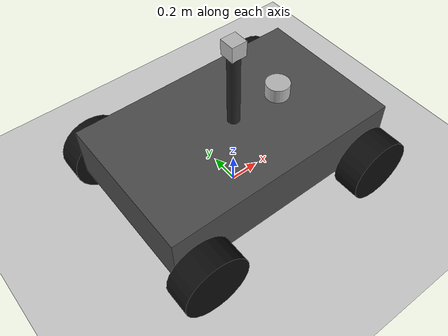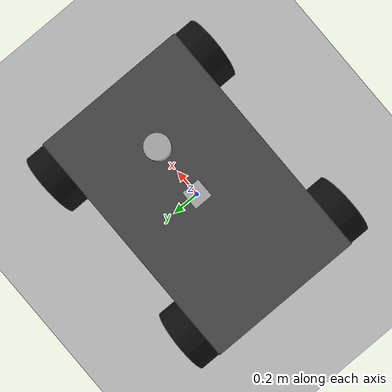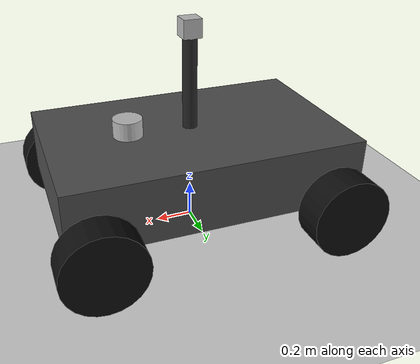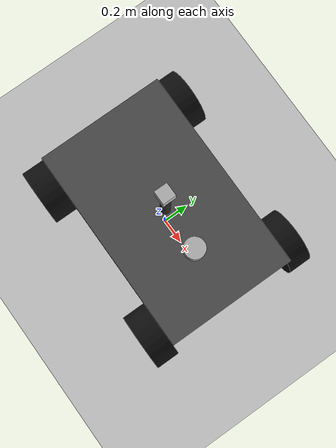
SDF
<sdf version="1.7">
    <world name="test_world">

        <plugin
            filename="gz-sim-physics-system"
            name="gz::sim::systems::Physics">
        </plugin>
        <plugin
            filename="gz-sim-sensors-system"
            name="gz::sim::systems::Sensors">
            <render_engine>ogre2</render_engine>
        </plugin>
        <plugin
            filename="gz-sim-user-commands-system"
            name="gz::sim::systems::UserCommands">
        </plugin>
        <plugin
            filename="gz-sim-scene-broadcaster-system"
            name="gz::sim::systems::SceneBroadcaster">
        </plugin>

        <gui fullscreen="0">

            <!-- 3D scene -->
            <plugin filename="MinimalScene" name="3D View">
                <gz-gui>
                <title>3D View</title>
                <property type="bool" key="showTitleBar">false</property>
                <property type="string" key="state">docked</property>
                </gz-gui>

                <engine>ogre2</engine>
                <scene>scene</scene>
                <ambient_light>0.4 0.4 0.4</ambient_light>
                <background_color>0.8 0.8 0.8</background_color>
                <camera_pose>-6 0 6 0 0.5 0</camera_pose>
            </plugin>

            <!-- Plugins that add functionality to the scene -->
            <plugin filename="EntityContextMenuPlugin" name="Entity context menu">
                <gz-gui>
                <property key="state" type="string">floating</property>
                <property key="width" type="double">5</property>
                <property key="height" type="double">5</property>
                <property key="showTitleBar" type="bool">false</property>
                </gz-gui>
            </plugin>
            <plugin filename="GzSceneManager" name="Scene Manager">
                <gz-gui>
                <property key="resizable" type="bool">false</property>
                <property key="width" type="double">5</property>
                <property key="height" type="double">5</property>
                <property key="state" type="string">floating</property>
                <property key="showTitleBar" type="bool">false</property>
                </gz-gui>
            </plugin>
            <plugin filename="InteractiveViewControl" name="Interactive view control">
                <gz-gui>
                <property key="resizable" type="bool">false</property>
                <property key="width" type="double">5</property>
                <property key="height" type="double">5</property>
                <property key="state" type="string">floating</property>
                <property key="showTitleBar" type="bool">false</property>
                </gz-gui>
            </plugin>
            <plugin filename="CameraTracking" name="Camera Tracking">
                <gz-gui>
                <property key="resizable" type="bool">false</property>
                <property key="width" type="double">5</property>
                <property key="height" type="double">5</property>
                <property key="state" type="string">floating</property>
                <property key="showTitleBar" type="bool">false</property>
                </gz-gui>
            </plugin>
            <!-- World control -->
            <plugin filename="WorldControl" name="World control">
                <gz-gui>
                <title>World control</title>
                <property type="bool" key="showTitleBar">false</property>
                <property type="bool" key="resizable">false</property>
                <property type="double" key="height">72</property>
                <property type="double" key="z">1</property>

                <property type="string" key="state">floating</property>
                <anchors target="3D View">
                    <line own="left" target="left"/>
                    <line own="bottom" target="bottom"/>
                </anchors>
                </gz-gui>

                <play_pause>true</play_pause>
                <step>true</step>
                <start_paused>true</start_paused>
                <use_event>true</use_event>

            </plugin>

            <!-- World statistics -->
            <plugin filename="WorldStats" name="World stats">
                <gz-gui>
                <title>World stats</title>
                <property type="bool" key="showTitleBar">false</property>
                <property type="bool" key="resizable">false</property>
                <property type="double" key="height">110</property>
                <property type="double" key="width">290</property>
                <property type="double" key="z">1</property>

                <property type="string" key="state">floating</property>
                <anchors target="3D View">
                    <line own="right" target="right"/>
                    <line own="bottom" target="bottom"/>
                </anchors>
                </gz-gui>

                <sim_time>true</sim_time>
                <real_time>true</real_time>
                <real_time_factor>true</real_time_factor>
                <iterations>true</iterations>
            </plugin>

            <plugin filename="ImageDisplay" name="Image Display">
                <gz-gui>
                <property key="state" type="string">floating</property>
                </gz-gui>
                <topic>camera</topic>
            </plugin>

            <!-- Inspector -->

            <!-- Entity tree -->
        </gui>

        <include>
            <uri>
                https://fuel.gazebosim.org/1.0/OpenRobotics/models/Sun
            </uri>
        </include>

        <include>
            <uri>
                ../models/ground_plane
            </uri>
        </include>

        <include>
            <uri>
                ../models/basic_rover
            </uri>
        </include>
    </world>
</sdf>

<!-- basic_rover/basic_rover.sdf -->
<sdf version="1.10">

  <model name="basic_rover">

    <!-- Rover is affected by physics -->
    <static>false</static>

    <!--                     CHASSIS                       -->

    <link name="chassis">

      <pose>0 0 0.395 0 0 0</pose>

      <inertial>

        <mass>20.0</mass>

        <!-- Center of mass at link center -->
        <pose>0 0 0 0 0 0</pose>

        <!-- Inertia for a 1.6 x 1.0 x 0.35 box, mass 20 kg -->
        <inertia>
          <ixx>1.8729</ixx>
          <iyy>4.6646</iyy>
          <izz>5.9333</izz>

          <ixy>0</ixy>
          <ixz>0</ixz>
          <iyz>0</iyz>
        </inertia>

      </inertial>

      <!-- CHASSIS VISUAL -->

      <visual name="chassis_visual">

        <geometry>
          <box>
            <size>1.6 1.0 0.35</size>
          </box>
        </geometry>

        <material>
          <ambient>0.2 0.2 0.2 1</ambient>
          <diffuse>0.3 0.3 0.3 1</diffuse>
        </material>

      </visual>

      <!-- CHASSIS COLLISION -->

      <collision name="chassis_collision">

        <geometry>
          <box>
            <size>1.6 1.0 0.35</size>
          </box>
        </geometry>

        <surface>

          <friction>
            <ode>
              <mu>1.0</mu>
              <mu2>1.0</mu2>
            </ode>
          </friction>

        </surface>

      </collision>

    </link>

    <!--                 FRONT LEFT WHEEL                  -->

    <link name="front_left_wheel">

      <!-- X = forward, Y = left, Z = upward -->
      <pose>0.65 0.59 0.22 1.5708 0 0</pose>

      <inertial>

        <mass>2.0</mass>

        <!-- Solid cylinder inertia -->
        <inertia>

          <ixx>0.0499</ixx>
          <iyy>0.0484</iyy>
          <izz>0.0484</izz>

          <ixy>0</ixy>
          <ixz>0</ixz>
          <iyz>0</iyz>

        </inertia>

      </inertial>

      <visual name="front_left_wheel_visual">

        <geometry>
          <cylinder>
            <radius>0.22</radius>
            <length>0.18</length>
          </cylinder>
        </geometry>

        <material>
          <ambient>0.05 0.05 0.05 1</ambient>
          <diffuse>0.05 0.05 0.05 1</diffuse>
        </material>

      </visual>

      <collision name="front_left_wheel_collision">

        <geometry>
          <cylinder>
            <radius>0.22</radius>
            <length>0.18</length>
          </cylinder>
        </geometry>

        <surface>

          <friction>
            <ode>
              <mu>2.0</mu>
              <mu2>2.0</mu2>
            </ode>
          </friction>

        </surface>

      </collision>

    </link>

    <!--                FRONT RIGHT WHEEL                  -->

    <link name="front_right_wheel">

      <pose>0.65 -0.59 0.22 1.5708 0 0</pose>

      <inertial>

        <mass>2.0</mass>

        <inertia>
          <ixx>0.0499</ixx>
          <iyy>0.0484</iyy>
          <izz>0.0484</izz>

          <ixy>0</ixy>
          <ixz>0</ixz>
          <iyz>0</iyz>
        </inertia>

      </inertial>

      <visual name="front_right_wheel_visual">

        <geometry>
          <cylinder>
            <radius>0.22</radius>
            <length>0.18</length>
          </cylinder>
        </geometry>

        <material>
          <ambient>0.05 0.05 0.05 1</ambient>
          <diffuse>0.05 0.05 0.05 1</diffuse>
        </material>

      </visual>

      <collision name="front_right_wheel_collision">

        <geometry>
          <cylinder>
            <radius>0.22</radius>
            <length>0.18</length>
          </cylinder>
        </geometry>

        <surface>

          <friction>
            <ode>
              <mu>2.0</mu>
              <mu2>2.0</mu2>
            </ode>
          </friction>

        </surface>

      </collision>

    </link>

    <!--                  REAR LEFT WHEEL                  -->

    <link name="rear_left_wheel">

      <pose>-0.65 0.59 0.22 1.5708 0 0</pose>

      <inertial>

        <mass>2.0</mass>

        <inertia>
          <ixx>0.0499</ixx>
          <iyy>0.0484</iyy>
          <izz>0.0484</izz>

          <ixy>0</ixy>
          <ixz>0</ixz>
          <iyz>0</iyz>
        </inertia>

      </inertial>

      <visual name="rear_left_wheel_visual">

        <geometry>
          <cylinder>
            <radius>0.22</radius>
            <length>0.18</length>
          </cylinder>
        </geometry>

        <material>
          <ambient>0.05 0.05 0.05 1</ambient>
          <diffuse>0.05 0.05 0.05 1</diffuse>
        </material>

      </visual>

      <collision name="rear_left_wheel_collision">

        <geometry>
          <cylinder>
            <radius>0.22</radius>
            <length>0.18</length>
          </cylinder>
        </geometry>

        <surface>

          <friction>
            <ode>
              <mu>2.0</mu>
              <mu2>2.0</mu2>
            </ode>
          </friction>

        </surface>

      </collision>

    </link>

    <!--                 REAR RIGHT WHEEL                  -->

    <link name="rear_right_wheel">

      <pose>-0.65 -0.59 0.22 1.5708 0 0</pose>

      <inertial>

        <mass>2.0</mass>

        <inertia>
          <ixx>0.0499</ixx>
          <iyy>0.0484</iyy>
          <izz>0.0484</izz>

          <ixy>0</ixy>
          <ixz>0</ixz>
          <iyz>0</iyz>
        </inertia>

      </inertial>

      <visual name="rear_right_wheel_visual">

        <geometry>
          <cylinder>
            <radius>0.22</radius>
            <length>0.18</length>
          </cylinder>
        </geometry>

        <material>
          <ambient>0.05 0.05 0.05 1</ambient>
          <diffuse>0.05 0.05 0.05 1</diffuse>
        </material>

      </visual>

      <collision name="rear_right_wheel_collision">

        <geometry>
          <cylinder>
            <radius>0.22</radius>
            <length>0.18</length>
          </cylinder>
        </geometry>

        <surface>

          <friction>
            <ode>
              <mu>2.0</mu>
              <mu2>2.0</mu2>
            </ode>
          </friction>

        </surface>

      </collision>

    </link>

    <!--                       JOINTS                      -->

    <!-- FRONT LEFT -->

    <joint name="front_left_wheel_joint" type="revolute">

      <parent>chassis</parent>
      <child>front_left_wheel</child>

      <!-- Joint position in chassis frame -->
      <pose relative_to="chassis">0.65 0.59 -0.175 0 0 0</pose>

      <axis>

        <!-- Wheel axle points along Y -->
        <xyz expressed_in="chassis">0 1 0</xyz>

        <limit>
          <lower>-1e16</lower>
          <upper>1e16</upper>
          <effort>100</effort>
          <velocity>20</velocity>
        </limit>

        <dynamics>
          <damping>0.1</damping>
          <friction>0.0</friction>
        </dynamics>

      </axis>

    </joint>

    <!-- FRONT RIGHT -->

    <joint name="front_right_wheel_joint" type="revolute">

      <parent>chassis</parent>
      <child>front_right_wheel</child>

      <pose relative_to="chassis">0.65 -0.59 -0.175 0 0 0</pose>

      <axis>

        <xyz expressed_in="chassis">0 1 0</xyz>

        <limit>
          <lower>-1e16</lower>
          <upper>1e16</upper>
          <effort>100</effort>
          <velocity>20</velocity>
        </limit>

        <dynamics>
          <damping>0.1</damping>
          <friction>0.0</friction>
        </dynamics>

      </axis>

    </joint>

    <!-- REAR LEFT -->

    <joint name="rear_left_wheel_joint" type="revolute">

      <parent>chassis</parent>
      <child>rear_left_wheel</child>

      <pose relative_to="chassis">-0.65 0.59 -0.175 0 0 0</pose>

      <axis>

        <xyz expressed_in="chassis">0 1 0</xyz>

        <limit>
          <lower>-1e16</lower>
          <upper>1e16</upper>
          <effort>100</effort>
          <velocity>20</velocity>
        </limit>

        <dynamics>
          <damping>0.1</damping>
          <friction>0.0</friction>
        </dynamics>

      </axis>

    </joint>

    <!-- REAR RIGHT -->

    <joint name="rear_right_wheel_joint" type="revolute">

      <parent>chassis</parent>
      <child>rear_right_wheel</child>

      <pose relative_to="chassis">-0.65 -0.59 -0.175 0 0 0</pose>

      <axis>

        <xyz expressed_in="chassis">0 1 0</xyz>

        <limit>
          <lower>-1e16</lower>
          <upper>1e16</upper>
          <effort>100</effort>
          <velocity>20</velocity>
        </limit>

        <dynamics>
          <damping>0.1</damping>
          <friction>0.0</friction>
        </dynamics>

      </axis>

    </joint>

    <!--                     CAMERA                       -->

    <link name="camera_link">

      <!--
           Rod top = z = 1.07

           Camera size = 0.10 m
           Half height = 0.05

           Camera center:
           1.07 + 0.05 = 1.12
      -->

      <pose>0 0 1.12 0 0 0</pose>

      <inertial>

        <mass>0.1</mass>

        <inertia>

          <ixx>0.000166667</ixx>
          <iyy>0.000166667</iyy>
          <izz>0.000166667</izz>

          <ixy>0</ixy>
          <ixz>0</ixz>
          <iyz>0</iyz>

        </inertia>

      </inertial>

      <!-- CAMERA BODY COLLISION -->

      <collision name="camera_collision">

        <geometry>

          <box>
            <size>0.1 0.1 0.1</size>
          </box>

        </geometry>

      </collision>

      <!-- CAMERA BODY VISUAL -->

      <visual name="camera_visual">

        <geometry>

          <box>
            <size>0.1 0.1 0.1</size>
          </box>

        </geometry>

      </visual>

      <!-- CAMERA SENSOR -->

      <sensor name="camera_sensor" type="camera">

        <camera>

          <horizontal_fov>1.047</horizontal_fov>

          <image>
            <width>640</width>
            <height>480</height>
          </image>

          <clip>
            <near>0.1</near>
            <far>100</far>
          </clip>

        </camera>

        <always_on>true</always_on>

        <update_rate>30</update_rate>

        <visualize>true</visualize>

        <topic>camera</topic>

      </sensor>

    </link>

    <!--           CAMERA SUPPORT TO CAMERA JOINT          -->

    <joint name="camera_joint" type="fixed">

      <parent>camera_support</parent>

      <child>camera_link</child>

    </joint>

    <!--                  CAMERA SUPPORT                   -->

    <link name="camera_support">

      <!--
        Chassis center is at z = 0.395
        Chassis top = 0.395 + 0.175 = 0.57

        Stick height = 0.50
        Therefore its center is at:
        0.57 + 0.25 = 0.82
      -->

      <pose>0 0 0.82 0 0 0</pose>

      <inertial>

        <mass>0.5</mass>

        <!-- Approximate inertia for cylindrical support -->
        <inertia>
          <ixx>0.0105</ixx>
          <iyy>0.0105</iyy>
          <izz>0.00125</izz>

          <ixy>0</ixy>
          <ixz>0</ixz>
          <iyz>0</iyz>
        </inertia>

      </inertial>

      <!-- VISUAL -->

      <visual name="camera_support_visual">

        <geometry>

          <cylinder>
            <radius>0.04</radius>
            <length>0.50</length>
          </cylinder>

        </geometry>

        <material>
          <ambient>0.1 0.1 0.1 1</ambient>
          <diffuse>0.15 0.15 0.15 1</diffuse>
        </material>

      </visual>

      <!-- COLLISION -->

      <collision name="camera_support_collision">

        <geometry>

          <cylinder>
            <radius>0.04</radius>
            <length>0.50</length>
          </cylinder>

        </geometry>

      </collision>

    </link>

    <!--            CAMERA SUPPORT FIXED JOINT             -->

    <joint name="camera_support_joint" type="fixed">

      <parent>chassis</parent>
      <child>camera_support</child>

      <!-- Position at the top center of the chassis -->

      <pose relative_to="chassis">0 0 0.175 0 0 0</pose>

    </joint>

    <!--                DIFFERENTIAL DRIVE                 -->

    <plugin
      filename="gz-sim-diff-drive-system"
      name="gz::sim::systems::DiffDrive">

      <!-- LEFT SIDE WHEELS -->

      <left_joint>front_left_wheel_joint</left_joint>
      <left_joint>rear_left_wheel_joint</left_joint>

      <!-- RIGHT SIDE WHEELS -->

      <right_joint>front_right_wheel_joint</right_joint>
      <right_joint>rear_right_wheel_joint</right_joint>

      <!-- Distance between left and right wheels -->

      <wheel_separation>1.18</wheel_separation>

      <!-- Wheel radius -->

      <wheel_radius>0.22</wheel_radius>

      <!-- Gazebo velocity command topic -->

      <topic>/cmd_vel</topic>

      <!-- Maximum wheel acceleration -->

      <max_linear_acceleration>1.0</max_linear_acceleration>

      <max_angular_acceleration>2.0</max_angular_acceleration>

    </plugin>

    <!--                       LIDAR                       -->

    <link name="lidar_link">

      <!--
        Chassis top = 0.57

        Lidar height = 0.10
        Half height = 0.05

        Lidar center = 0.57 + 0.05 = 0.62
      -->

      <pose>0.35 0 0.62 0 0 0</pose>

      <inertial>

        <mass>0.2</mass>

        <inertia>
          <ixx>0.0005</ixx>
          <iyy>0.0005</iyy>
          <izz>0.0005</izz>

          <ixy>0</ixy>
          <ixz>0</ixz>
          <iyz>0</iyz>
        </inertia>

      </inertial>

      <!-- LIDAR BODY -->

      <visual name="lidar_visual">

        <geometry>
          <cylinder>
            <radius>0.08</radius>
            <length>0.10</length>
          </cylinder>
        </geometry>

      </visual>

      <collision name="lidar_collision">

        <geometry>
          <cylinder>
            <radius>0.08</radius>
            <length>0.10</length>
          </cylinder>
        </geometry>

      </collision>

      <!-- 2D LIDAR SENSOR -->

      <sensor name="lidar_sensor" type="gpu_lidar">

        <topic>/scan</topic>

        <update_rate>10</update_rate>

        <ray>

          <scan>

            <horizontal>
              <samples>640</samples>
              <resolution>1</resolution>
              <min_angle>-3.14159</min_angle>
              <max_angle>3.14159</max_angle>
            </horizontal>

            <vertical>
              <samples>1</samples>
              <resolution>1</resolution>
              <min_angle>0</min_angle>
              <max_angle>0</max_angle>
            </vertical>

          </scan>

          <range>
            <min>0.1</min>
            <max>10</max>
            <resolution>0.01</resolution>
          </range>

        </ray>

        <always_on>true</always_on>

        <visualize>true</visualize>

      </sensor>

    </link>

    <!--                 LIDAR FIXED JOINT                 -->

    <joint name="lidar_joint" type="fixed">

      <parent>chassis</parent>
      <child>lidar_link</child>

    </joint>

  </model>

</sdf>
